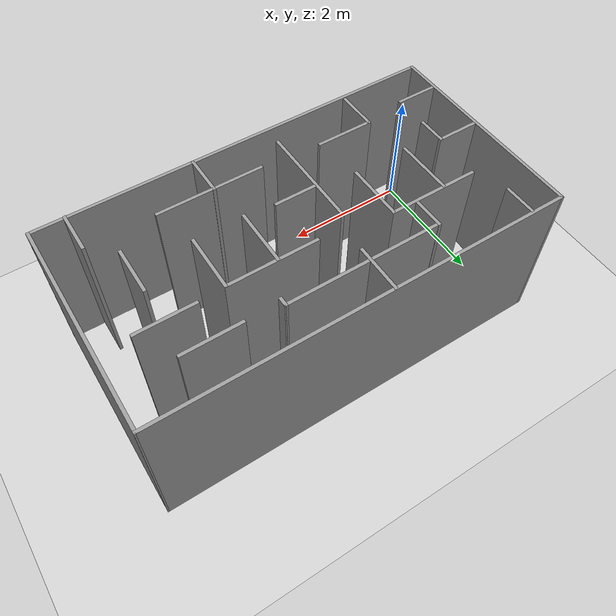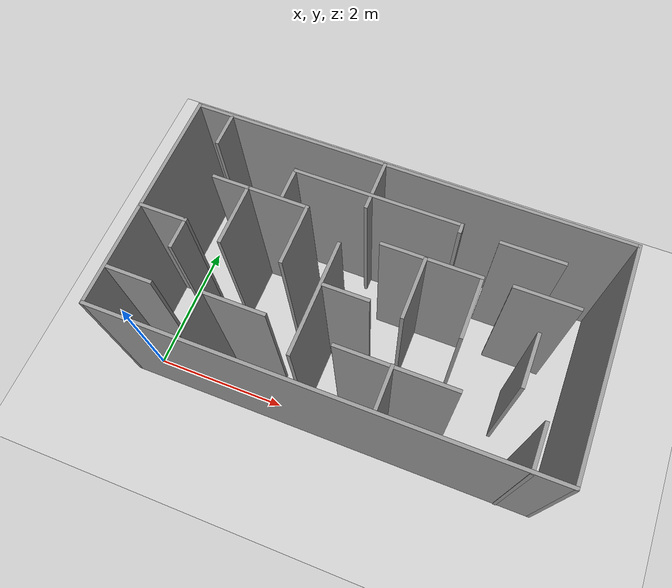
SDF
<?xml version="1.0" ?>
<sdf version="1.6">
  <world name="indoor">

    <physics type="ode">
      <real_time_update_rate>1000.0</real_time_update_rate>
      <max_step_size>0.001</max_step_size>
      <real_time_factor>1.0</real_time_factor>
      <ode>
        <solver>
          <type>quick</type>
          <iters>150</iters>
          <sor>1.4</sor>
        </solver>
        <constraints>
          <cfm>0.00001</cfm>
          <erp>0.2</erp>
          <contact_max_correcting_vel>2000.0</contact_max_correcting_vel>
          <contact_surface_layer>0.01</contact_surface_layer>
        </constraints>
      </ode>
    </physics>

    <include><uri>model://sun</uri></include>
    <include><uri>model://ground_plane</uri></include>

    <scene>
      <shadows>false</shadows>
    </scene>

    <gui fullscreen='0'>
      <camera name='user_camera'>
        <pose>3.5 2.5 15.0 0 1.5708 0</pose>
        <view_controller>orbit</view_controller>
      </camera>
    </gui>

    <model name='maps2'>
    <pose>2.86751 1.41813 0 0 -0 0</pose>
    <link name='Wall_11'>
      <collision name='Wall_11_Collision'>
        <geometry>
          <box>
            <size>0.65 0.05 2.5</size>
          </box>
        </geometry>
        <pose>0 0 1.25 0 -0 0</pose>
      </collision>
      <visual name='Wall_11_Visual'>
        <pose>0 0 1.25 0 -0 0</pose>
        <geometry>
          <box>
            <size>0.65 0.05 2.5</size>
          </box>
        </geometry>
        <material>
          <script>
            <uri>file://media/materials/scripts/gazebo.material</uri>
            <name>Gazebo/Grey</name>
          </script>
          <ambient>1 1 1 1</ambient>
        </material>
        <meta>
          <layer>0</layer>
        </meta>
      </visual>
      <pose>-2.78451 -1.07213 0 0 -0 0</pose>
    </link>
    <link name='Wall_13'>
      <collision name='Wall_13_Collision'>
        <geometry>
          <box>
            <size>0.455 0.05 2.5</size>
          </box>
        </geometry>
        <pose>0 0 1.25 0 -0 0</pose>
      </collision>
      <visual name='Wall_13_Visual'>
        <pose>0 0 1.25 0 -0 0</pose>
        <geometry>
          <box>
            <size>0.455 0.05 2.5</size>
          </box>
        </geometry>
        <material>
          <script>
            <uri>file://media/materials/scripts/gazebo.material</uri>
            <name>Gazebo/Grey</name>
          </script>
          <ambient>1 1 1 1</ambient>
        </material>
        <meta>
          <layer>0</layer>
        </meta>
      </visual>
      <pose>-2.47951 -0.319631 0 0 -0 -1.5708</pose>
    </link>
    <link name='Wall_15'>
      <collision name='Wall_15_Collision'>
        <geometry>
          <box>
            <size>0.649697 0.05 2.5</size>
          </box>
        </geometry>
        <pose>0 0 1.25 0 -0 0</pose>
      </collision>
      <visual name='Wall_15_Visual'>
        <pose>0 0 1.25 0 -0 0</pose>
        <geometry>
          <box>
            <size>0.649697 0.05 2.5</size>
          </box>
        </geometry>
        <material>
          <script>
            <uri>file://media/materials/scripts/gazebo.material</uri>
            <name>Gazebo/Grey</name>
          </script>
          <ambient>1 1 1 1</ambient>
        </material>
        <meta>
          <layer>0</layer>
        </meta>
      </visual>
      <pose>-1.81451 -1.26213 0 0 -0 -1.5708</pose>
    </link>
    <link name='Wall_18'>
      <collision name='Wall_18_Collision'>
        <geometry>
          <box>
            <size>0.9 0.05 2.5</size>
          </box>
        </geometry>
        <pose>0 0 1.25 0 -0 0</pose>
      </collision>
      <visual name='Wall_18_Visual'>
        <pose>0 0 1.25 0 -0 0</pose>
        <geometry>
          <box>
            <size>0.9 0.05 2.5</size>
          </box>
        </geometry>
        <material>
          <script>
            <uri>file://media/materials/scripts/gazebo.material</uri>
            <name>Gazebo/Grey</name>
          </script>
          <ambient>1 1 1 1</ambient>
        </material>
        <meta>
          <layer>0</layer>
        </meta>
      </visual>
      <pose>-1.38951 -0.962131 0 0 -0 0</pose>
    </link>
    <link name='Wall_2'>
      <collision name='Wall_2_Collision'>
        <geometry>
          <box>
            <size>6.305 0.05 2.5</size>
          </box>
        </geometry>
        <pose>0 0 1.25 0 -0 0</pose>
      </collision>
      <visual name='Wall_2_Visual'>
        <pose>0 0 1.25 0 -0 0</pose>
        <geometry>
          <box>
            <size>6.305 0.05 2.5</size>
          </box>
        </geometry>
        <material>
          <script>
            <uri>file://media/materials/scripts/gazebo.material</uri>
            <name>Gazebo/Grey</name>
          </script>
          <ambient>1 1 1 1</ambient>
        </material>
        <meta>
          <layer>0</layer>
        </meta>
      </visual>
      <pose>0.00499 -1.62313 0 0 -0 0</pose>
    </link>
    <link name='Wall_20'>
      <collision name='Wall_20_Collision'>
        <geometry>
          <box>
            <size>1.4 0.05 2.5</size>
          </box>
        </geometry>
        <pose>0 0 1.25 0 -0 0</pose>
      </collision>
      <visual name='Wall_20_Visual'>
        <pose>0 0 1.25 0 -0 0</pose>
        <geometry>
          <box>
            <size>1.4 0.05 2.5</size>
          </box>
        </geometry>
        <material>
          <script>
            <uri>file://media/materials/scripts/gazebo.material</uri>
            <name>Gazebo/Grey</name>
          </script>
          <ambient>1 1 1 1</ambient>
        </material>
        <meta>
          <layer>0</layer>
        </meta>
      </visual>
      <pose>-1.74451 0.632869 0 0 -0 0</pose>
    </link>
    <link name='Wall_21'>
      <collision name='Wall_21_Collision'>
        <geometry>
          <box>
            <size>0.899697 0.05 2.5</size>
          </box>
        </geometry>
        <pose>0 0 1.25 0 -0 0</pose>
      </collision>
      <visual name='Wall_21_Visual'>
        <pose>0 0 1.25 0 -0 0</pose>
        <geometry>
          <box>
            <size>0.899697 0.05 2.5</size>
          </box>
        </geometry>
        <material>
          <script>
            <uri>file://media/materials/scripts/gazebo.material</uri>
            <name>Gazebo/Grey</name>
          </script>
          <ambient>1 1 1 1</ambient>
        </material>
        <meta>
          <layer>0</layer>
        </meta>
      </visual>
      <pose>-1.06951 0.207869 0 0 -0 -1.5708</pose>
    </link>
    <link name='Wall_23'>
      <collision name='Wall_23_Collision'>
        <geometry>
          <box>
            <size>0.899697 0.05 2.5</size>
          </box>
        </geometry>
        <pose>0 0 1.25 0 -0 0</pose>
      </collision>
      <visual name='Wall_23_Visual'>
        <pose>0 0 1.25 0 -0 0</pose>
        <geometry>
          <box>
            <size>0.899697 0.05 2.5</size>
          </box>
        </geometry>
        <material>
          <script>
            <uri>file://media/materials/scripts/gazebo.material</uri>
            <name>Gazebo/Grey</name>
          </script>
          <ambient>1 1 1 1</ambient>
        </material>
        <meta>
          <layer>0</layer>
        </meta>
      </visual>
      <pose>-1.92451 0.192869 0 0 -0 -1.5708</pose>
    </link>
    <link name='Wall_25'>
      <collision name='Wall_25_Collision'>
        <geometry>
          <box>
            <size>0.690312 0.05 2.5</size>
          </box>
        </geometry>
        <pose>0 0 1.25 0 -0 0</pose>
      </collision>
      <visual name='Wall_25_Visual'>
        <pose>0 0 1.25 0 -0 0</pose>
        <geometry>
          <box>
            <size>0.690312 0.05 2.5</size>
          </box>
        </geometry>
        <material>
          <script>
            <uri>file://media/materials/scripts/gazebo.material</uri>
            <name>Gazebo/Grey</name>
          </script>
          <ambient>1 1 1 1</ambient>
        </material>
        <meta>
          <layer>0</layer>
        </meta>
      </visual>
      <pose>-2.79951 -0.112131 0 0 -0 0</pose>
    </link>
    <link name='Wall_27'>
      <collision name='Wall_27_Collision'>
        <geometry>
          <box>
            <size>1.6497 0.05 2.5</size>
          </box>
        </geometry>
        <pose>0 0 1.25 0 -0 0</pose>
      </collision>
      <visual name='Wall_27_Visual'>
        <pose>0 0 1.25 0 -0 0</pose>
        <geometry>
          <box>
            <size>1.6497 0.05 2.5</size>
          </box>
        </geometry>
        <material>
          <script>
            <uri>file://media/materials/scripts/gazebo.material</uri>
            <name>Gazebo/Grey</name>
          </script>
          <ambient>1 1 1 1</ambient>
        </material>
        <meta>
          <layer>0</layer>
        </meta>
      </visual>
      <pose>-0.47951 -0.522131 0 0 -0 -1.5708</pose>
    </link>
    <link name='Wall_29'>
      <collision name='Wall_29_Collision'>
        <geometry>
          <box>
            <size>1.64958 0.05 2.5</size>
          </box>
        </geometry>
        <pose>0 0 1.25 0 -0 0</pose>
      </collision>
      <visual name='Wall_29_Visual'>
        <pose>0 0 1.25 0 -0 0</pose>
        <geometry>
          <box>
            <size>1.64958 0.05 2.5</size>
          </box>
        </geometry>
        <material>
          <script>
            <uri>file://media/materials/scripts/gazebo.material</uri>
            <name>Gazebo/Grey</name>
          </script>
          <ambient>1 1 1 1</ambient>
        </material>
        <meta>
          <layer>0</layer>
        </meta>
      </visual>
      <pose>0.78049 -1.02713 0 0 -0 0</pose>
    </link>
    <link name='Wall_33'>
      <collision name='Wall_33_Collision'>
        <geometry>
          <box>
            <size>0.5 0.05 2.5</size>
          </box>
        </geometry>
        <pose>0 0 1.25 0 -0 0</pose>
      </collision>
      <visual name='Wall_33_Visual'>
        <pose>0 0 1.25 0 -0 0</pose>
        <geometry>
          <box>
            <size>0.5 0.05 2.5</size>
          </box>
        </geometry>
        <material>
          <script>
            <uri>file://media/materials/scripts/gazebo.material</uri>
            <name>Gazebo/Grey</name>
          </script>
          <ambient>1 1 1 1</ambient>
        </material>
        <meta>
          <layer>0</layer>
        </meta>
      </visual>
      <pose>-2.62451 1.37287 0 0 -0 -1.5708</pose>
    </link>
    <link name='Wall_35'>
      <collision name='Wall_35_Collision'>
        <geometry>
          <box>
            <size>0.5 0.05 2.5</size>
          </box>
        </geometry>
        <pose>0 0 1.25 0 -0 0</pose>
      </collision>
      <visual name='Wall_35_Visual'>
        <pose>0 0 1.25 0 -0 0</pose>
        <geometry>
          <box>
            <size>0.5 0.05 2.5</size>
          </box>
        </geometry>
        <material>
          <script>
            <uri>file://media/materials/scripts/gazebo.material</uri>
            <name>Gazebo/Grey</name>
          </script>
          <ambient>1 1 1 1</ambient>
        </material>
        <meta>
          <layer>0</layer>
        </meta>
      </visual>
      <pose>-1.44451 0.887869 0 0 -0 1.5708</pose>
    </link>
    <link name='Wall_37'>
      <collision name='Wall_37_Collision'>
        <geometry>
          <box>
            <size>1.39958 0.05 2.5</size>
          </box>
        </geometry>
        <pose>0 0 1.25 0 -0 0</pose>
      </collision>
      <visual name='Wall_37_Visual'>
        <pose>0 0 1.25 0 -0 0</pose>
        <geometry>
          <box>
            <size>1.39958 0.05 2.5</size>
          </box>
        </geometry>
        <material>
          <script>
            <uri>file://media/materials/scripts/gazebo.material</uri>
            <name>Gazebo/Grey</name>
          </script>
          <ambient>1 1 1 1</ambient>
        </material>
        <meta>
          <layer>0</layer>
        </meta>
      </visual>
      <pose>0.71049 0.477869 0 0 -0 0</pose>
    </link>
    <link name='Wall_38'>
      <collision name='Wall_38_Collision'>
        <geometry>
          <box>
            <size>0.899697 0.05 2.5</size>
          </box>
        </geometry>
        <pose>0 0 1.25 0 -0 0</pose>
      </collision>
      <visual name='Wall_38_Visual'>
        <pose>0 0 1.25 0 -0 0</pose>
        <geometry>
          <box>
            <size>0.899697 0.05 2.5</size>
          </box>
        </geometry>
        <material>
          <script>
            <uri>file://media/materials/scripts/gazebo.material</uri>
            <name>Gazebo/Grey</name>
          </script>
          <ambient>1 1 1 1</ambient>
        </material>
        <meta>
          <layer>0</layer>
        </meta>
      </visual>
      <pose>1.38549 0.052869 0 0 -0 -1.5708</pose>
    </link>
    <link name='Wall_4'>
      <collision name='Wall_4_Collision'>
        <geometry>
          <box>
            <size>3.30525 0.05 2.5</size>
          </box>
        </geometry>
        <pose>0 0 1.25 0 -0 0</pose>
      </collision>
      <visual name='Wall_4_Visual'>
        <pose>0 0 1.25 0 -0 0</pose>
        <geometry>
          <box>
            <size>3.30525 0.05 2.5</size>
          </box>
        </geometry>
        <material>
          <script>
            <uri>file://media/materials/scripts/gazebo.material</uri>
            <name>Gazebo/Grey</name>
          </script>
          <ambient>1 1 1 1</ambient>
        </material>
        <meta>
          <layer>0</layer>
        </meta>
      </visual>
      <pose>-3.13251 0.004369 0 0 -0 1.5708</pose>
    </link>
    <link name='Wall_40'>
      <collision name='Wall_40_Collision'>
        <geometry>
          <box>
            <size>0.649583 0.05 2.5</size>
          </box>
        </geometry>
        <pose>0 0 1.25 0 -0 0</pose>
      </collision>
      <visual name='Wall_40_Visual'>
        <pose>0 0 1.25 0 -0 0</pose>
        <geometry>
          <box>
            <size>0.649583 0.05 2.5</size>
          </box>
        </geometry>
        <material>
          <script>
            <uri>file://media/materials/scripts/gazebo.material</uri>
            <name>Gazebo/Grey</name>
          </script>
          <ambient>1 1 1 1</ambient>
        </material>
        <meta>
          <layer>0</layer>
        </meta>
      </visual>
      <pose>-0.13951 -0.327131 0 0 -0 0</pose>
    </link>
    <link name='Wall_42'>
      <collision name='Wall_42_Collision'>
        <geometry>
          <box>
            <size>2.4 0.05 2.5</size>
          </box>
        </geometry>
        <pose>0 0 1.25 0 -0 0</pose>
      </collision>
      <visual name='Wall_42_Visual'>
        <pose>0 0 1.25 0 -0 0</pose>
        <geometry>
          <box>
            <size>2.4 0.05 2.5</size>
          </box>
        </geometry>
        <material>
          <script>
            <uri>file://media/materials/scripts/gazebo.material</uri>
            <name>Gazebo/Grey</name>
          </script>
          <ambient>1 1 1 1</ambient>
        </material>
        <meta>
          <layer>0</layer>
        </meta>
      </visual>
      <pose>-0.25951 1.10787 0 0 -0 0</pose>
    </link>
    <link name='Wall_44'>
      <collision name='Wall_44_Collision'>
        <geometry>
          <box>
            <size>0.75 0.05 2.5</size>
          </box>
        </geometry>
        <pose>0 0 1.25 0 -0 0</pose>
      </collision>
      <visual name='Wall_44_Visual'>
        <pose>0 0 1.25 0 -0 0</pose>
        <geometry>
          <box>
            <size>0.75 0.05 2.5</size>
          </box>
        </geometry>
        <material>
          <script>
            <uri>file://media/materials/scripts/gazebo.material</uri>
            <name>Gazebo/Grey</name>
          </script>
          <ambient>1 1 1 1</ambient>
        </material>
        <meta>
          <layer>0</layer>
        </meta>
      </visual>
      <pose>2.25049 -0.357131 0 0 -0 1.5708</pose>
    </link>
    <link name='Wall_46'>
      <collision name='Wall_46_Collision'>
        <geometry>
          <box>
            <size>0.15 0.05 2.5</size>
          </box>
        </geometry>
        <pose>0 0 1.25 0 -0 0</pose>
      </collision>
      <visual name='Wall_46_Visual'>
        <pose>0 0 1.25 0 -0 0</pose>
        <geometry>
          <box>
            <size>0.15 0.05 2.5</size>
          </box>
        </geometry>
        <material>
          <script>
            <uri>file://media/materials/scripts/gazebo.material</uri>
            <name>Gazebo/Grey</name>
          </script>
          <ambient>1 1 1 1</ambient>
        </material>
        <meta>
          <layer>0</layer>
        </meta>
      </visual>
      <pose>0.91549 1.05787 0 0 -0 -1.5708</pose>
    </link>
    <link name='Wall_48'>
      <collision name='Wall_48_Collision'>
        <geometry>
          <box>
            <size>0.899583 0.05 2.5</size>
          </box>
        </geometry>
        <pose>0 0 1.25 0 -0 0</pose>
      </collision>
      <visual name='Wall_48_Visual'>
        <pose>0 0 1.25 0 -0 0</pose>
        <geometry>
          <box>
            <size>0.899583 0.05 2.5</size>
          </box>
        </geometry>
        <material>
          <script>
            <uri>file://media/materials/scripts/gazebo.material</uri>
            <name>Gazebo/Grey</name>
          </script>
          <ambient>1 1 1 1</ambient>
        </material>
        <meta>
          <layer>0</layer>
        </meta>
      </visual>
      <pose>1.88549 1.04287 0 0 -0 0</pose>
    </link>
    <link name='Wall_50'>
      <collision name='Wall_50_Collision'>
        <geometry>
          <box>
            <size>0.899583 0.05 2.5</size>
          </box>
        </geometry>
        <pose>0 0 1.25 0 -0 0</pose>
      </collision>
      <visual name='Wall_50_Visual'>
        <pose>0 0 1.25 0 -0 0</pose>
        <geometry>
          <box>
            <size>0.899583 0.05 2.5</size>
          </box>
        </geometry>
        <material>
          <script>
            <uri>file://media/materials/scripts/gazebo.material</uri>
            <name>Gazebo/Grey</name>
          </script>
          <ambient>1 1 1 1</ambient>
        </material>
        <meta>
          <layer>0</layer>
        </meta>
      </visual>
      <pose>2.22049 0.502869 0 0 -0 0</pose>
    </link>
    <link name='Wall_52'>
      <collision name='Wall_52_Collision'>
        <geometry>
          <box>
            <size>0.899697 0.05 2.5</size>
          </box>
        </geometry>
        <pose>0 0 1.25 0 -0 0</pose>
      </collision>
      <visual name='Wall_52_Visual'>
        <pose>0 0 1.25 0 -0 0</pose>
        <geometry>
          <box>
            <size>0.899697 0.05 2.5</size>
          </box>
        </geometry>
        <material>
          <script>
            <uri>file://media/materials/scripts/gazebo.material</uri>
            <name>Gazebo/Grey</name>
          </script>
          <ambient>1 1 1 1</ambient>
        </material>
        <meta>
          <layer>0</layer>
        </meta>
      </visual>
      <pose>0.63049 0.042869 0 0 -0 -1.5708</pose>
    </link>
    <link name='Wall_54'>
      <collision name='Wall_54_Collision'>
        <geometry>
          <box>
            <size>0.649697 0.05 2.5</size>
          </box>
        </geometry>
        <pose>0 0 1.25 0 -0 0</pose>
      </collision>
      <visual name='Wall_54_Visual'>
        <pose>0 0 1.25 0 -0 0</pose>
        <geometry>
          <box>
            <size>0.649697 0.05 2.5</size>
          </box>
        </geometry>
        <material>
          <script>
            <uri>file://media/materials/scripts/gazebo.material</uri>
            <name>Gazebo/Grey</name>
          </script>
          <ambient>1 1 1 1</ambient>
        </material>
        <meta>
          <layer>0</layer>
        </meta>
      </visual>
      <pose>0.73049 -1.32213 0 0 -0 -1.5708</pose>
    </link>
    <link name='Wall_56'>
      <collision name='Wall_56_Collision'>
        <geometry>
          <box>
            <size>0.649721 0.05 2.5</size>
          </box>
        </geometry>
        <pose>0 0 1.25 0 -0 0</pose>
      </collision>
      <visual name='Wall_56_Visual'>
        <pose>0 0 1.25 0 -0 0</pose>
        <geometry>
          <box>
            <size>0.649721 0.05 2.5</size>
          </box>
        </geometry>
        <material>
          <script>
            <uri>file://media/materials/scripts/gazebo.material</uri>
            <name>Gazebo/Grey</name>
          </script>
          <ambient>1 1 1 1</ambient>
        </material>
        <meta>
          <layer>0</layer>
        </meta>
      </visual>
      <pose>2.62549 -1.33213 0 0 -0 -1.5708</pose>
    </link>
    <link name='Wall_58'>
      <collision name='Wall_58_Collision'>
        <geometry>
          <box>
            <size>0.75 0.05 2.5</size>
          </box>
        </geometry>
        <pose>0 0 1.25 0 -0 0</pose>
      </collision>
      <visual name='Wall_58_Visual'>
        <pose>0 0 1.25 0 -0 0</pose>
        <geometry>
          <box>
            <size>0.75 0.05 2.5</size>
          </box>
        </geometry>
        <material>
          <script>
            <uri>file://media/materials/scripts/gazebo.material</uri>
            <name>Gazebo/Grey</name>
          </script>
          <ambient>1 1 1 1</ambient>
        </material>
        <meta>
          <layer>0</layer>
        </meta>
      </visual>
      <pose>-0.34951 1.27287 0 0 -0 -1.5708</pose>
    </link>
    <link name='Wall_6'>
      <collision name='Wall_6_Collision'>
        <geometry>
          <box>
            <size>6.305 0.05 2.5</size>
          </box>
        </geometry>
        <pose>0 0 1.25 0 -0 0</pose>
      </collision>
      <visual name='Wall_6_Visual'>
        <pose>0 0 1.25 0 -0 0</pose>
        <geometry>
          <box>
            <size>6.305 0.05 2.5</size>
          </box>
        </geometry>
        <material>
          <script>
            <uri>file://media/materials/scripts/gazebo.material</uri>
            <name>Gazebo/Grey</name>
          </script>
          <ambient>1 1 1 1</ambient>
        </material>
        <meta>
          <layer>0</layer>
        </meta>
      </visual>
      <pose>0.00499 1.62937 0 0 -0 -0.000799</pose>
    </link>
    <link name='Wall_8'>
      <collision name='Wall_8_Collision'>
        <geometry>
          <box>
            <size>3.3 0.05 2.5</size>
          </box>
        </geometry>
        <pose>0 0 1.25 0 -0 0</pose>
      </collision>
      <visual name='Wall_8_Visual'>
        <pose>0 0 1.25 0 -0 0</pose>
        <geometry>
          <box>
            <size>3.3 0.05 2.5</size>
          </box>
        </geometry>
        <material>
          <script>
            <uri>file://media/materials/scripts/gazebo.material</uri>
            <name>Gazebo/Grey</name>
          </script>
          <ambient>1 1 1 1</ambient>
        </material>
        <meta>
          <layer>0</layer>
        </meta>
      </visual>
      <pose>3.13249 0.001869 0 0 -0 -1.5708</pose>
    </link>
    <static>1</static>
  </model>
  </world>
</sdf>
